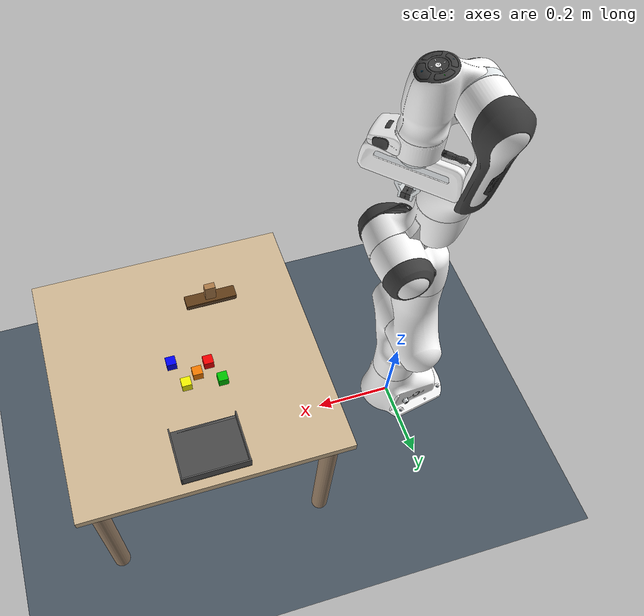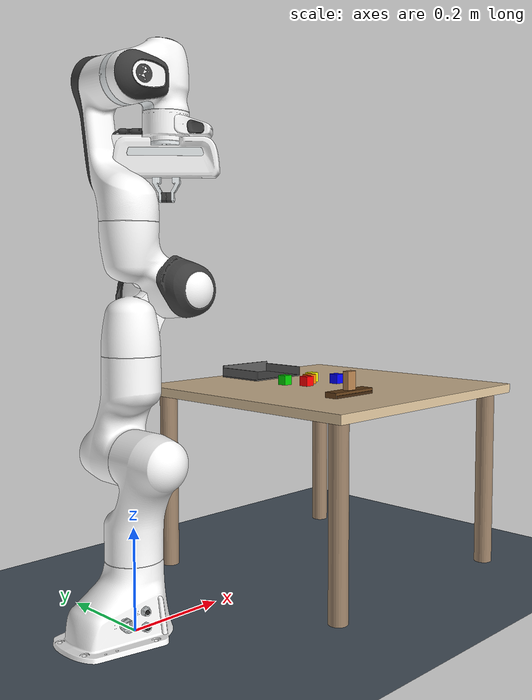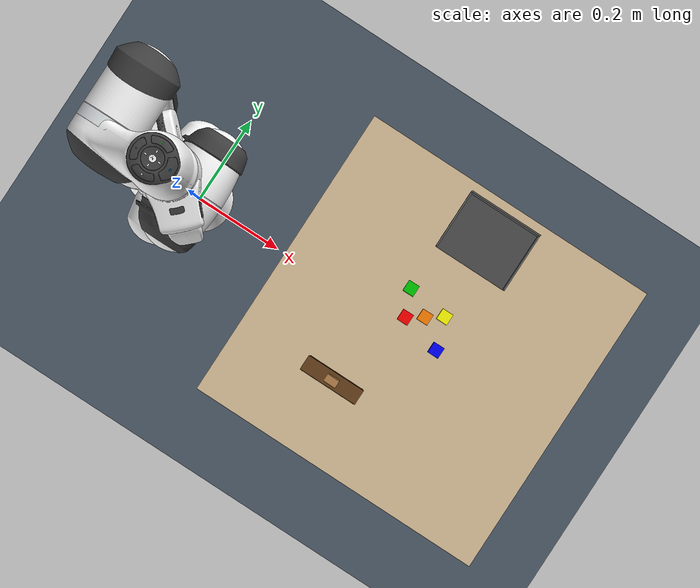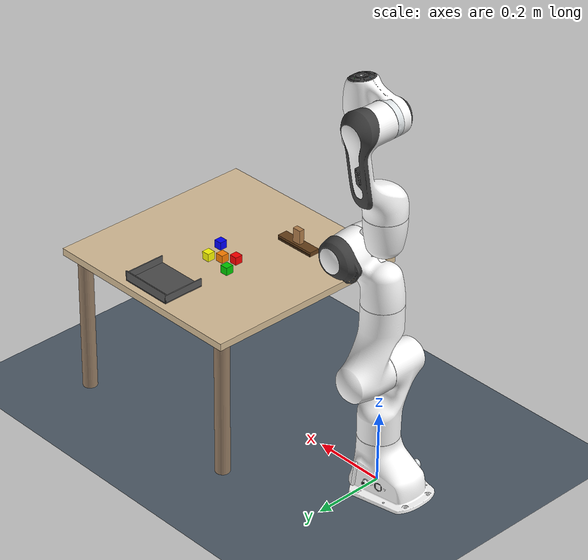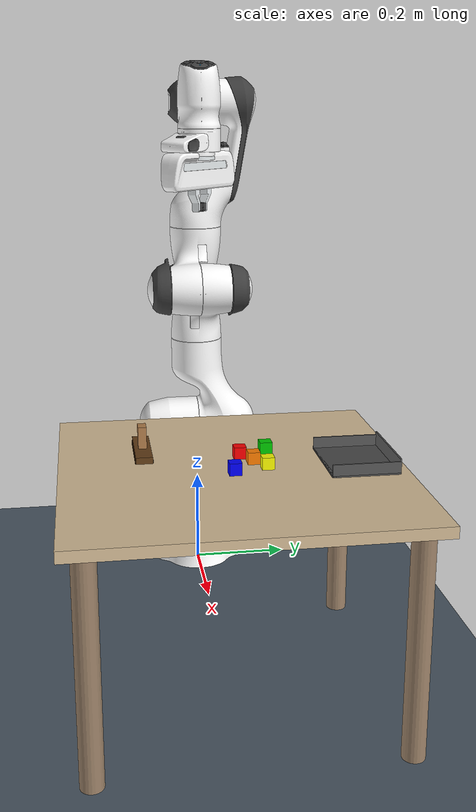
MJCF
<mujoco model="corl_dustpan_franka">

  <compiler angle="radian" autolimits="true"
            meshdir="../../../mujoco_menagerie/franka_emika_panda/assets"/>

  <include file="_panda_base.xml"/>

  <visual>
    <headlight diffuse="0.5 0.5 0.5" ambient="0.25 0.25 0.25" specular="0.1 0.1 0.1"/>
    <rgba haze="0.15 0.25 0.35 1"/>
    <global azimuth="135" elevation="-25" offwidth="800" offheight="600"/>
  </visual>

  <statistic center="0.4 0 0.5" extent="1.2"/>

  <asset>
    <texture type="skybox" builtin="gradient" rgb1="0.3 0.5 0.8"
             rgb2="0.1 0.2 0.4" width="512" height="3072"/>
    <texture type="2d" name="lab_floor" builtin="checker"
             rgb1="0.35 0.4 0.45" rgb2="0.25 0.3 0.35" width="512" height="512"
             mark="cross" markrgb="0.8 0.8 0.9"/>
    <material name="groundplane" texture="lab_floor" texrepeat="20 20"
              reflectance="0.3" shininess="0.1"/>

    <!-- Clean solid light-wood table (no texture) -->
    <material name="table_mat" rgba="0.85 0.75 0.6 1"
              reflectance="0.15" shininess="0.2" specular="0.1"/>

    <!-- Dustpan: dark gray -->
    <material name="dustpan_mat" rgba="0.3 0.3 0.3 1"
              specular="0.3" shininess="0.2" reflectance="0.1"/>
    <material name="dustpan_wall_mat" rgba="0.35 0.35 0.35 1"
              specular="0.3" shininess="0.2" reflectance="0.1"/>

    <!-- Brush: light brown handle, dark brown bristles -->
    <material name="brush_handle_mat" rgba="0.7 0.5 0.3 1"
              specular="0.2" shininess="0.1" reflectance="0.05"/>
    <material name="brush_bristle_mat" rgba="0.4 0.25 0.1 1"
              specular="0.05" shininess="0.02" reflectance="0.01"/>

    <!-- Debris: 5 bright distinct colors -->
    <material name="debris_red" rgba="1 0 0 1"
              specular="0.4" shininess="0.3"/>
    <material name="debris_blue" rgba="0 0 1 1"
              specular="0.4" shininess="0.3"/>
    <material name="debris_green" rgba="0 0.8 0 1"
              specular="0.4" shininess="0.3"/>
    <material name="debris_yellow" rgba="1 1 0 1"
              specular="0.4" shininess="0.3"/>
    <material name="debris_orange" rgba="1 0.5 0 1"
              specular="0.4" shininess="0.3"/>
  </asset>

  <worldbody>
    <light pos="0 0 4" dir="0 0 -1" directional="true" diffuse="0.5 0.5 0.5"/>
    <light pos="2 2 3" dir="-0.5 -0.5 -1" diffuse="0.3 0.3 0.3"/>
    <light pos="0 -2 3" dir="0 0.5 -1" diffuse="0.2 0.2 0.2"/>
    <geom name="floor" size="10 10 0.01" type="plane" material="groundplane"/>

    <!-- Table: 600x600x20mm clean solid-color box. Centre at z=0.41, surface at z=0.42 -->
    <body name="table" pos="0.55 0 0.41">
      <geom name="table_top" type="box" size="0.30 0.30 0.01"
            pos="0 0 0" material="table_mat"
            friction="1.0 0.5 0.0001"/>
      <!-- Table legs (visual only) -->
      <geom name="leg1" type="cylinder" size="0.02 0.20" pos="-0.26 -0.26 -0.21"
            rgba="0.6 0.5 0.4 1" contype="0" conaffinity="0"/>
      <geom name="leg2" type="cylinder" size="0.02 0.20" pos="0.26 -0.26 -0.21"
            rgba="0.6 0.5 0.4 1" contype="0" conaffinity="0"/>
      <geom name="leg3" type="cylinder" size="0.02 0.20" pos="-0.26 0.26 -0.21"
            rgba="0.6 0.5 0.4 1" contype="0" conaffinity="0"/>
      <geom name="leg4" type="cylinder" size="0.02 0.20" pos="0.26 0.26 -0.21"
            rgba="0.6 0.5 0.4 1" contype="0" conaffinity="0"/>
    </body>

    <body name="dustpan" pos="0.55 0.22 0.42">
      <!-- Base plate: 150x120x3mm -->
      <geom name="dustpan_base" type="box" size="0.075 0.06 0.0015"
            pos="0 0 0.0015" material="dustpan_mat"
            friction="0.8 0.4 0.001"/>
      <!-- Front lip: thin angled edge 150x3x3mm to help scoop -->
      <geom name="dustpan_front_lip" type="box" size="0.075 0.003 0.0015"
            pos="0 -0.057 0.0015" material="dustpan_wall_mat"
            friction="0.8 0.4 0.001"/>
      <!-- Back wall: 150x3x25mm (taller to catch debris) -->
      <geom name="dustpan_back" type="box" size="0.075 0.0015 0.0125"
            pos="0 0.0585 0.0155" material="dustpan_wall_mat"
            friction="0.8 0.4 0.001"/>
      <!-- Left wall: 3x120x20mm -->
      <geom name="dustpan_left" type="box" size="0.0015 0.06 0.01"
            pos="-0.0735 0 0.013" material="dustpan_wall_mat"
            friction="0.8 0.4 0.001"/>
      <!-- Right wall: 3x120x20mm -->
      <geom name="dustpan_right" type="box" size="0.0015 0.06 0.01"
            pos="0.0735 0 0.013" material="dustpan_wall_mat"
            friction="0.8 0.4 0.001"/>
      <site name="dustpan_opening" pos="0 -0.06 0.005" size="0.005" rgba="0 1 0 0"/>
    </body>

    <body name="brush" pos="0.45 -0.15 0.42">
      <freejoint name="brush_free"/>
      <!-- Bristle plate: 120x30x12mm (wide sweeping surface, clearly visible) -->
      <geom name="brush_bristle" type="box" size="0.06 0.015 0.006"
            pos="0 0 0.006" material="brush_bristle_mat"
            condim="6" friction="2.0 1.0 0.003"
            solimp="0.9 0.95 0.005" solref="0.02 1"/>
      <!-- Bristle fringe: dark strip at very bottom for visual -->
      <geom name="brush_fringe" type="box" size="0.058 0.016 0.003"
            pos="0 0 0.003" rgba="0.25 0.15 0.05 1"
            condim="6" friction="2.0 1.0 0.003"
            solimp="0.9 0.95 0.005" solref="0.02 1"/>
      <!-- Handle block: 25x15x40mm box on top of bristle plate.
           Y=15mm fits Panda finger gap (0-40mm). -->
      <geom name="brush_handle" type="box" size="0.0125 0.0075 0.020"
            pos="0 0 0.032" material="brush_handle_mat"
            condim="6" friction="1.5 0.8 0.002"
            solimp="0.9 0.95 0.005" solref="0.02 1"/>
      <inertial pos="0 0 0.02" mass="0.08"
                diaginertia="0.00005 0.00004 0.00003"/>
    </body>

    <body name="debris_1" pos="0.50 0.02 0.431">
      <freejoint name="debris_1_free"/>
      <geom name="debris_1_geom" type="box" size="0.011 0.011 0.011"
            material="debris_red"
            condim="6" friction="0.6 0.3 0.001"
            solimp="0.9 0.95 0.003" solref="0.02 1"
            mass="0.010"/>
      <inertial pos="0 0 0" mass="0.010"
                diaginertia="8e-7 8e-7 8e-7"/>
    </body>

    <body name="debris_2" pos="0.58 0.00 0.431">
      <freejoint name="debris_2_free"/>
      <geom name="debris_2_geom" type="box" size="0.011 0.011 0.011"
            material="debris_blue"
            condim="6" friction="0.6 0.3 0.001"
            solimp="0.9 0.95 0.003" solref="0.02 1"
            mass="0.010"/>
      <inertial pos="0 0 0" mass="0.010"
                diaginertia="8e-7 8e-7 8e-7"/>
    </body>

    <body name="debris_3" pos="0.48 0.07 0.431">
      <freejoint name="debris_3_free"/>
      <geom name="debris_3_geom" type="box" size="0.011 0.011 0.011"
            material="debris_green"
            condim="6" friction="0.6 0.3 0.001"
            solimp="0.9 0.95 0.003" solref="0.02 1"
            mass="0.010"/>
      <inertial pos="0 0 0" mass="0.010"
                diaginertia="8e-7 8e-7 8e-7"/>
    </body>

    <body name="debris_4" pos="0.56 0.06 0.431">
      <freejoint name="debris_4_free"/>
      <geom name="debris_4_geom" type="box" size="0.011 0.011 0.011"
            material="debris_yellow"
            condim="6" friction="0.6 0.3 0.001"
            solimp="0.9 0.95 0.003" solref="0.02 1"
            mass="0.010"/>
      <inertial pos="0 0 0" mass="0.010"
                diaginertia="8e-7 8e-7 8e-7"/>
    </body>

    <body name="debris_5" pos="0.53 0.04 0.431">
      <freejoint name="debris_5_free"/>
      <geom name="debris_5_geom" type="box" size="0.011 0.011 0.011"
            material="debris_orange"
            condim="6" friction="0.6 0.3 0.001"
            solimp="0.9 0.95 0.003" solref="0.02 1"
            mass="0.010"/>
      <inertial pos="0 0 0" mass="0.010"
                diaginertia="8e-7 8e-7 8e-7"/>
    </body>

    <!-- Cameras: positioned to clearly show workspace without arm occlusion -->

    <!-- Camera target: centre of the dustpan/debris work area on table surface -->
    <body name="cam_target" pos="0.52 0.05 0.42">
      <site name="cam_target_site" pos="0 0 0" size="0.001" rgba="0 0 0 0"/>
    </body>

    <!-- Agentview: 3/4 angle from behind-right, elevated. Robot arm on left side
         of frame so dustpan + debris are clearly visible. -->
    <body name="cam_agent_body" pos="1.2 -0.7 1.0">
      <camera name="agentview" fovy="55" pos="0 0 0"
              mode="targetbody" target="cam_target"/>
    </body>

    <!-- Sideview: from the right side -->
    <body name="cam_side_body" pos="0.55 -1.1 0.7">
      <camera name="sideview" fovy="55" pos="0 0 0"
              mode="targetbody" target="cam_target"/>
    </body>

    <!-- Topview: directly overhead, looking straight down at dustpan area.
         Offset slightly in +X and -Y from the target to avoid arm occlusion. -->
    <body name="cam_top_body" pos="0.55 0.05 1.6">
      <camera name="topview" fovy="45" pos="0 0 0"
              mode="targetbody" target="cam_target"/>
    </body>
  </worldbody>

  <!--
    Keyframe: Panda home (7 arm + 2 finger) + brush (7 free: 3 pos + 4 quat)
    + 5 debris (7 free each) = 9 + 7 + 7*5 = 51 qpos values.
  -->
  <keyframe>
    <key name="home"
         qpos="0 -0.785 0 -2.356 0 1.571 0.785 0.04 0.04
               0.45 -0.15 0.42 1 0 0 0
               0.50 0.02 0.431 1 0 0 0
               0.58 0.00 0.431 1 0 0 0
               0.48 0.07 0.431 1 0 0 0
               0.56 0.06 0.431 1 0 0 0
               0.53 0.04 0.431 1 0 0 0"
         ctrl="0 -0.785 0 -2.356 0 1.571 0.785 255"/>
  </keyframe>
</mujoco>

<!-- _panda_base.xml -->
<mujoco model="panda_base">

  <option integrator="implicitfast"/>

  <default>
    <default class="panda">
      <material specular="0.5" shininess="0.25"/>
      <joint armature="0.1" damping="1" axis="0 0 1" range="-2.8973 2.8973"/>
      <general dyntype="none" biastype="affine" ctrlrange="-2.8973 2.8973" forcerange="-87 87"/>
      <default class="finger">
        <joint axis="0 1 0" type="slide" range="0 0.04"/>
      </default>
      <default class="visual">
        <geom type="mesh" contype="0" conaffinity="0" group="2"/>
      </default>
      <default class="collision">
        <geom type="mesh" group="3"/>
        <default class="fingertip_pad_collision_1">
          <geom type="box" size="0.0085 0.004 0.0085" pos="0 0.0055 0.0445"
                friction="5 2 0.01" condim="6" solimp="0.95 0.99 0.005" solref="0.01 1"/>
        </default>
        <default class="fingertip_pad_collision_2">
          <geom type="box" size="0.003 0.002 0.003" pos="0.0055 0.002 0.05"
                friction="5 2 0.01" condim="6"/>
        </default>
        <default class="fingertip_pad_collision_3">
          <geom type="box" size="0.003 0.002 0.003" pos="-0.0055 0.002 0.05"
                friction="5 2 0.01" condim="6"/>
        </default>
        <default class="fingertip_pad_collision_4">
          <geom type="box" size="0.003 0.002 0.0035" pos="0.0055 0.002 0.0395"
                friction="5 2 0.01" condim="6"/>
        </default>
        <default class="fingertip_pad_collision_5">
          <geom type="box" size="0.003 0.002 0.0035" pos="-0.0055 0.002 0.0395"
                friction="5 2 0.01" condim="6"/>
        </default>
      </default>
    </default>
  </default>

  <asset>
    <material class="panda" name="panda_white" rgba="1 1 1 1"/>
    <material class="panda" name="panda_off_white" rgba="0.901961 0.921569 0.929412 1"/>
    <material class="panda" name="panda_black" rgba="0.25 0.25 0.25 1"/>
    <material class="panda" name="panda_green" rgba="0 1 0 1"/>
    <material class="panda" name="panda_light_blue" rgba="0.039216 0.541176 0.780392 1"/>

    <mesh name="link0_c" file="link0.stl"/>
    <mesh name="link1_c" file="link1.stl"/>
    <mesh name="link2_c" file="link2.stl"/>
    <mesh name="link3_c" file="link3.stl"/>
    <mesh name="link4_c" file="link4.stl"/>
    <mesh name="link5_c0" file="link5_collision_0.obj"/>
    <mesh name="link5_c1" file="link5_collision_1.obj"/>
    <mesh name="link5_c2" file="link5_collision_2.obj"/>
    <mesh name="link6_c" file="link6.stl"/>
    <mesh name="link7_c" file="link7.stl"/>
    <mesh name="hand_c" file="hand.stl"/>

    <mesh file="link0_0.obj"/>
    <mesh file="link0_1.obj"/>
    <mesh file="link0_2.obj"/>
    <mesh file="link0_3.obj"/>
    <mesh file="link0_4.obj"/>
    <mesh file="link0_5.obj"/>
    <mesh file="link0_7.obj"/>
    <mesh file="link0_8.obj"/>
    <mesh file="link0_9.obj"/>
    <mesh file="link0_10.obj"/>
    <mesh file="link0_11.obj"/>
    <mesh file="link1.obj"/>
    <mesh file="link2.obj"/>
    <mesh file="link3_0.obj"/>
    <mesh file="link3_1.obj"/>
    <mesh file="link3_2.obj"/>
    <mesh file="link3_3.obj"/>
    <mesh file="link4_0.obj"/>
    <mesh file="link4_1.obj"/>
    <mesh file="link4_2.obj"/>
    <mesh file="link4_3.obj"/>
    <mesh file="link5_0.obj"/>
    <mesh file="link5_1.obj"/>
    <mesh file="link5_2.obj"/>
    <mesh file="link6_0.obj"/>
    <mesh file="link6_1.obj"/>
    <mesh file="link6_2.obj"/>
    <mesh file="link6_3.obj"/>
    <mesh file="link6_4.obj"/>
    <mesh file="link6_5.obj"/>
    <mesh file="link6_6.obj"/>
    <mesh file="link6_7.obj"/>
    <mesh file="link6_8.obj"/>
    <mesh file="link6_9.obj"/>
    <mesh file="link6_10.obj"/>
    <mesh file="link6_11.obj"/>
    <mesh file="link6_12.obj"/>
    <mesh file="link6_13.obj"/>
    <mesh file="link6_14.obj"/>
    <mesh file="link6_15.obj"/>
    <mesh file="link6_16.obj"/>
    <mesh file="link7_0.obj"/>
    <mesh file="link7_1.obj"/>
    <mesh file="link7_2.obj"/>
    <mesh file="link7_3.obj"/>
    <mesh file="link7_4.obj"/>
    <mesh file="link7_5.obj"/>
    <mesh file="link7_6.obj"/>
    <mesh file="link7_7.obj"/>
    <mesh file="hand_0.obj"/>
    <mesh file="hand_1.obj"/>
    <mesh file="hand_2.obj"/>
    <mesh file="hand_3.obj"/>
    <mesh file="hand_4.obj"/>
    <mesh file="finger_0.obj"/>
    <mesh file="finger_1.obj"/>
  </asset>

  <worldbody>
    <body name="link0" childclass="panda">
      <inertial mass="0.629769" pos="-0.041018 -0.00014 0.049974"
        fullinertia="0.00315 0.00388 0.004285 8.2904e-7 0.00015 8.2299e-6"/>
      <geom mesh="link0_0" material="panda_off_white" class="visual"/>
      <geom mesh="link0_1" material="panda_black" class="visual"/>
      <geom mesh="link0_2" material="panda_off_white" class="visual"/>
      <geom mesh="link0_3" material="panda_black" class="visual"/>
      <geom mesh="link0_4" material="panda_off_white" class="visual"/>
      <geom mesh="link0_5" material="panda_black" class="visual"/>
      <geom mesh="link0_7" material="panda_white" class="visual"/>
      <geom mesh="link0_8" material="panda_white" class="visual"/>
      <geom mesh="link0_9" material="panda_black" class="visual"/>
      <geom mesh="link0_10" material="panda_off_white" class="visual"/>
      <geom mesh="link0_11" material="panda_white" class="visual"/>
      <geom mesh="link0_c" class="collision"/>
      <body name="link1" pos="0 0 0.333">
        <inertial mass="4.970684" pos="0.003875 0.002081 -0.04762"
          fullinertia="0.70337 0.70661 0.0091170 -0.00013900 0.0067720 0.019169"/>
        <joint name="joint1"/>
        <geom material="panda_white" mesh="link1" class="visual"/>
        <geom mesh="link1_c" class="collision"/>
        <body name="link2" quat="1 -1 0 0">
          <inertial mass="0.646926" pos="-0.003141 -0.02872 0.003495"
            fullinertia="0.0079620 2.8110e-2 2.5995e-2 -3.925e-3 1.0254e-2 7.04e-4"/>
          <joint name="joint2" range="-1.7628 1.7628"/>
          <geom material="panda_white" mesh="link2" class="visual"/>
          <geom mesh="link2_c" class="collision"/>
          <body name="link3" pos="0 -0.316 0" quat="1 1 0 0">
            <joint name="joint3"/>
            <inertial mass="3.228604" pos="2.7518e-2 3.9252e-2 -6.6502e-2"
              fullinertia="3.7242e-2 3.6155e-2 1.083e-2 -4.761e-3 -1.1396e-2 -1.2805e-2"/>
            <geom mesh="link3_0" material="panda_white" class="visual"/>
            <geom mesh="link3_1" material="panda_white" class="visual"/>
            <geom mesh="link3_2" material="panda_white" class="visual"/>
            <geom mesh="link3_3" material="panda_black" class="visual"/>
            <geom mesh="link3_c" class="collision"/>
            <body name="link4" pos="0.0825 0 0" quat="1 1 0 0">
              <inertial mass="3.587895" pos="-5.317e-2 1.04419e-1 2.7454e-2"
                fullinertia="2.5853e-2 1.9552e-2 2.8323e-2 7.796e-3 -1.332e-3 8.641e-3"/>
              <joint name="joint4" range="-3.0718 -0.0698"/>
              <geom mesh="link4_0" material="panda_white" class="visual"/>
              <geom mesh="link4_1" material="panda_white" class="visual"/>
              <geom mesh="link4_2" material="panda_black" class="visual"/>
              <geom mesh="link4_3" material="panda_white" class="visual"/>
              <geom mesh="link4_c" class="collision"/>
              <body name="link5" pos="-0.0825 0.384 0" quat="1 -1 0 0">
                <inertial mass="1.225946" pos="-1.1953e-2 4.1065e-2 -3.8437e-2"
                  fullinertia="3.5549e-2 2.9474e-2 8.627e-3 -2.117e-3 -4.037e-3 2.29e-4"/>
                <joint name="joint5"/>
                <geom mesh="link5_0" material="panda_black" class="visual"/>
                <geom mesh="link5_1" material="panda_white" class="visual"/>
                <geom mesh="link5_2" material="panda_white" class="visual"/>
                <geom mesh="link5_c0" class="collision"/>
                <geom mesh="link5_c1" class="collision"/>
                <geom mesh="link5_c2" class="collision"/>
                <body name="link6" quat="1 1 0 0">
                  <inertial mass="1.666555" pos="6.0149e-2 -1.4117e-2 -1.0517e-2"
                    fullinertia="1.964e-3 4.354e-3 5.433e-3 1.09e-4 -1.158e-3 3.41e-4"/>
                  <joint name="joint6" range="-0.0175 3.7525"/>
                  <geom mesh="link6_0" material="panda_off_white" class="visual"/>
                  <geom mesh="link6_1" material="panda_white" class="visual"/>
                  <geom mesh="link6_2" material="panda_black" class="visual"/>
                  <geom mesh="link6_3" material="panda_white" class="visual"/>
                  <geom mesh="link6_4" material="panda_white" class="visual"/>
                  <geom mesh="link6_5" material="panda_white" class="visual"/>
                  <geom mesh="link6_6" material="panda_white" class="visual"/>
                  <geom mesh="link6_7" material="panda_light_blue" class="visual"/>
                  <geom mesh="link6_8" material="panda_light_blue" class="visual"/>
                  <geom mesh="link6_9" material="panda_black" class="visual"/>
                  <geom mesh="link6_10" material="panda_black" class="visual"/>
                  <geom mesh="link6_11" material="panda_white" class="visual"/>
                  <geom mesh="link6_12" material="panda_green" class="visual"/>
                  <geom mesh="link6_13" material="panda_white" class="visual"/>
                  <geom mesh="link6_14" material="panda_black" class="visual"/>
                  <geom mesh="link6_15" material="panda_black" class="visual"/>
                  <geom mesh="link6_16" material="panda_white" class="visual"/>
                  <geom mesh="link6_c" class="collision"/>
                  <body name="link7" pos="0.088 0 0" quat="1 1 0 0">
                    <inertial mass="7.35522e-01" pos="1.0517e-2 -4.252e-3 6.1597e-2"
                      fullinertia="1.2516e-2 1.0027e-2 4.815e-3 -4.28e-4 -1.196e-3 -7.41e-4"/>
                    <joint name="joint7"/>
                    <geom mesh="link7_0" material="panda_white" class="visual"/>
                    <geom mesh="link7_1" material="panda_black" class="visual"/>
                    <geom mesh="link7_2" material="panda_black" class="visual"/>
                    <geom mesh="link7_3" material="panda_black" class="visual"/>
                    <geom mesh="link7_4" material="panda_black" class="visual"/>
                    <geom mesh="link7_5" material="panda_black" class="visual"/>
                    <geom mesh="link7_6" material="panda_black" class="visual"/>
                    <geom mesh="link7_7" material="panda_white" class="visual"/>
                    <geom mesh="link7_c" class="collision"/>
                    <body name="hand" pos="0 0 0.107" quat="0.9238795 0 0 -0.3826834">
                      <inertial mass="0.73" pos="-0.01 0 0.03" diaginertia="0.001 0.0025 0.0017"/>
                      <site name="pinch" pos="0 0 0.1034" size="0.005"
                            rgba="1 0 0 0.5" group="4"/>
                      <geom mesh="hand_0" material="panda_off_white" class="visual"/>
                      <geom mesh="hand_1" material="panda_black" class="visual"/>
                      <geom mesh="hand_2" material="panda_black" class="visual"/>
                      <geom mesh="hand_3" material="panda_white" class="visual"/>
                      <geom mesh="hand_4" material="panda_off_white" class="visual"/>
                      <geom mesh="hand_c" class="collision"/>
                      <body name="left_finger" pos="0 0 0.0584">
                        <inertial mass="0.015" pos="0 0 0" diaginertia="2.375e-6 2.375e-6 7.5e-7"/>
                        <joint name="finger_joint1" class="finger"/>
                        <geom mesh="finger_0" material="panda_off_white" class="visual"/>
                        <geom mesh="finger_1" material="panda_black" class="visual"/>
                        <geom mesh="finger_0" class="collision"/>
                        <geom class="fingertip_pad_collision_1"/>
                        <geom class="fingertip_pad_collision_2"/>
                        <geom class="fingertip_pad_collision_3"/>
                        <geom class="fingertip_pad_collision_4"/>
                        <geom class="fingertip_pad_collision_5"/>
                      </body>
                      <body name="right_finger" pos="0 0 0.0584" quat="0 0 0 1">
                        <inertial mass="0.015" pos="0 0 0" diaginertia="2.375e-6 2.375e-6 7.5e-7"/>
                        <joint name="finger_joint2" class="finger"/>
                        <geom mesh="finger_0" material="panda_off_white" class="visual"/>
                        <geom mesh="finger_1" material="panda_black" class="visual"/>
                        <geom mesh="finger_0" class="collision"/>
                        <geom class="fingertip_pad_collision_1"/>
                        <geom class="fingertip_pad_collision_2"/>
                        <geom class="fingertip_pad_collision_3"/>
                        <geom class="fingertip_pad_collision_4"/>
                        <geom class="fingertip_pad_collision_5"/>
                      </body>
                    </body>
                  </body>
                </body>
              </body>
            </body>
          </body>
        </body>
      </body>
    </body>
  </worldbody>

  <tendon>
    <fixed name="split">
      <joint joint="finger_joint1" coef="0.5"/>
      <joint joint="finger_joint2" coef="0.5"/>
    </fixed>
  </tendon>

  <equality>
    <joint joint1="finger_joint1" joint2="finger_joint2" solimp="0.95 0.99 0.001" solref="0.005 1"/>
  </equality>

  <actuator>
    <general class="panda" name="actuator1" joint="joint1" gainprm="4500" biasprm="0 -4500 -450"/>
    <general class="panda" name="actuator2" joint="joint2" gainprm="4500" biasprm="0 -4500 -450"
      ctrlrange="-1.7628 1.7628"/>
    <general class="panda" name="actuator3" joint="joint3" gainprm="3500" biasprm="0 -3500 -350"/>
    <general class="panda" name="actuator4" joint="joint4" gainprm="3500" biasprm="0 -3500 -350"
      ctrlrange="-3.0718 -0.0698"/>
    <general class="panda" name="actuator5" joint="joint5" gainprm="2000" biasprm="0 -2000 -200" forcerange="-12 12"/>
    <general class="panda" name="actuator6" joint="joint6" gainprm="2000" biasprm="0 -2000 -200" forcerange="-12 12"
      ctrlrange="-0.0175 3.7525"/>
    <general class="panda" name="actuator7" joint="joint7" gainprm="2000" biasprm="0 -2000 -200" forcerange="-12 12"/>
    <general class="panda" name="actuator8" tendon="split" forcerange="-2000 2000" ctrlrange="0 255"
      gainprm="0.3137254902 0 0" biasprm="0 -2000 -200"/>
  </actuator>

  <contact>
    <exclude body1="link0" body2="link1"/>
  </contact>
</mujoco>
